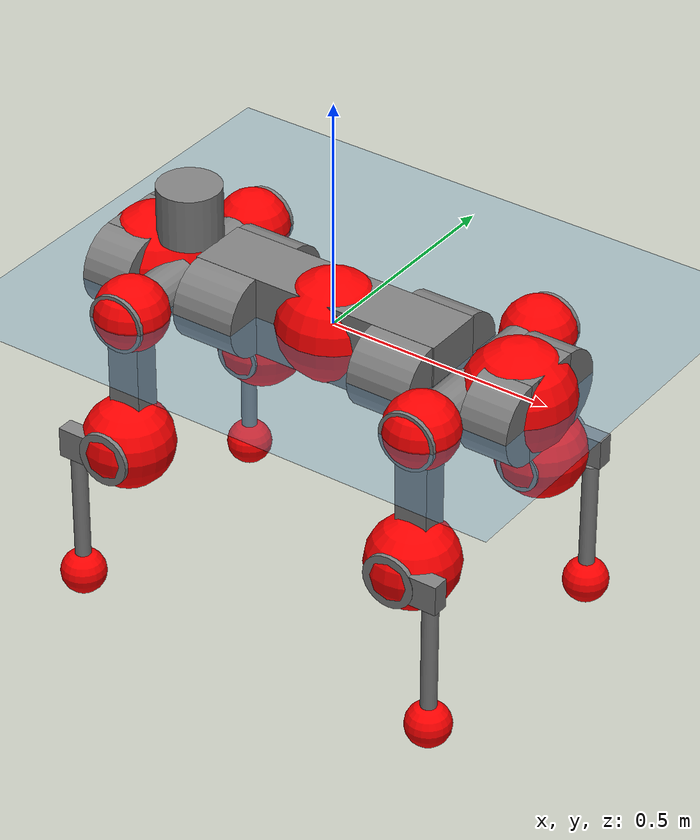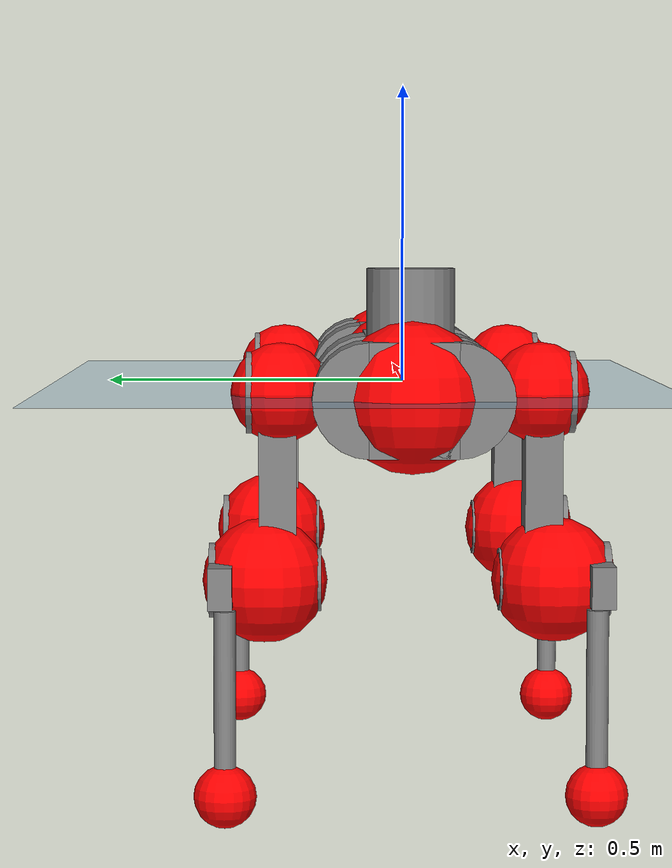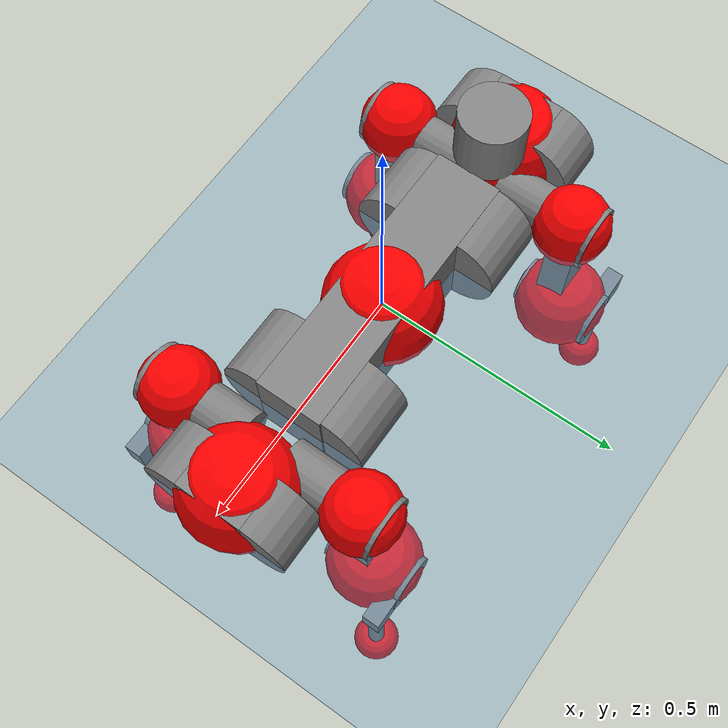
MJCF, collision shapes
<mujoco model="anymal_c">
  <compiler angle="radian" assetdir="assets" balanceinertia="true" inertiafromgeom="false"/>

  <option timestep="0.005" density="1.2" viscosity="2e-05"/>

  <size nkey="1"/>

  <visual>
    <quality shadowsize="8192"/>
    <map shadowclip="0.5"/>
  </visual>

  <default>
    <default class="/">
      <material specular="0" shininess="0.25"/>
      <geom contype="0" conaffinity="0" group="1" solref="-1000 -80"/>
      <site size="0.01 0.005 0.005" group="5"/>
      <general forcelimited="true" forcerange="-80 80" biastype="affine" gainprm="80" biasprm="0 -80 -2"/>
      <default class="anymal_c">
        <joint armature="0.01" damping="0.01" frictionloss="0.1"/>
        <default class="visual">
          <geom type="mesh" group="2"/>
          <default class="visual_zflip"/>
        </default>
        <default class="collision">
          <geom type="cylinder" group="3"/>
          <default class="foot">
            <geom size="0.03 0 0" type="sphere" condim="6" priority="1" friction="0.8 0.02 0.01" solimp="0.015 1 0.03"/>
          </default>
        </default>
      </default>
      <default class="reward_collision_sphere">
        <geom group="5" rgba="1 0 0 1"/>
      </default>
    </default>
  </default>

  <asset>
    <texture type="skybox" colorspace="auto" name="//unnamed_texture_0" builtin="gradient" rgb1="0.95 0.95 0.95" rgb2="0.95 0.95 0.95" width="100" height="600"/>
    <texture type="2d" colorspace="auto" name="texplane" builtin="checker" rgb1="0.345 0.575 0.748" rgb2="0.345 0.575 0.748" markrgb="1 1 1" width="512" height="512"/>
    <texture type="2d" colorspace="linear" name="base" file="base.png"/>
    <texture type="2d" colorspace="linear" name="top_shell" file="top_shell.png"/>
    <texture type="2d" colorspace="linear" name="bottom_shell" file="bottom_shell.png"/>
    <texture type="2d" colorspace="linear" name="remote" file="remote.png"/>
    <texture type="2d" colorspace="linear" name="hatch" file="hatch.png"/>
    <texture type="2d" colorspace="linear" name="handle" file="handle.png"/>
    <texture type="2d" colorspace="linear" name="face" file="face.png"/>
    <texture type="2d" colorspace="linear" name="battery" file="battery.png"/>
    <texture type="2d" colorspace="linear" name="lidar_cage" file="lidar_cage.png"/>
    <texture type="2d" colorspace="linear" name="depth_camera" file="depth_camera.png"/>
    <texture type="2d" colorspace="linear" name="wide_angle_camera" file="wide_angle_camera.png"/>
    <texture type="2d" colorspace="linear" name="lidar" file="lidar.png"/>
    <texture type="2d" colorspace="linear" name="drive" file="drive.png"/>
    <texture type="2d" colorspace="linear" name="hip_l" file="hip_l.png"/>
    <texture type="2d" colorspace="linear" name="shank_l" file="shank_l.png"/>
    <texture type="2d" colorspace="linear" name="foot" file="foot.png"/>
    <texture type="2d" colorspace="linear" name="thigh" file="thigh.png"/>
    <texture type="2d" colorspace="linear" name="shank_r" file="shank_r.png"/>
    <texture type="2d" colorspace="linear" name="hip_r" file="hip_r.png"/>
    <material name="MatPlane" class="/" texture="texplane" texuniform="true" texrepeat="2 2" specular="0.9" shininess="0.5"/>
    <material name="black_plastic" class="/" rgba="0.007 0.007 0.007 1"/>
    <material name="green" class="/" rgba="0.052 0.178 0.033 1"/>
    <material name="red" class="/" rgba="0.178 0.006 0.005 1"/>
    <material name="yellow" class="/" rgba="0.178 0.119 0.006 1"/>
    <material name="lwl" class="/" rgba="0.8 0.8 0.8 1"/>
    <material name="base" class="/" texture="base"/>
    <material name="top_shell" class="/" texture="top_shell"/>
    <material name="bottom_shell" class="/" texture="bottom_shell"/>
    <material name="hip_l" class="/" texture="hip_l"/>
    <material name="thigh" class="/" texture="thigh"/>
    <material name="shank_l" class="/" texture="shank_l"/>
    <material name="foot" class="/" texture="foot"/>
    <material name="hip_r" class="/" texture="hip_r"/>
    <material name="shank" class="/" texture="shank_r"/>
    <material name="hatch" class="/" texture="hatch"/>
    <material name="remote" class="/" texture="remote"/>
    <material name="handle" class="/" texture="handle"/>
    <material name="face" class="/" texture="face"/>
    <material name="depth_camera" class="/" texture="depth_camera"/>
    <material name="wide_angle_camera" class="/" texture="wide_angle_camera"/>
    <material name="battery" class="/" texture="battery"/>
    <material name="lidar_cage" class="/" texture="lidar_cage"/>
    <material name="lidar" class="/" texture="lidar"/>
    <material name="drive" class="/" texture="drive"/>
    <mesh name="base_0" class="/" file="base_0.obj"/>
    <mesh name="base_1" class="/" file="base_1.obj"/>
    <mesh name="base_2" class="/" file="base_2.obj"/>
    <mesh name="base_3" class="/" file="base_3.obj"/>
    <mesh name="base_4" class="/" file="base_4.obj"/>
    <mesh name="base_5" class="/" file="base_5.obj"/>
    <mesh name="top_shell" class="/" file="top_shell.obj"/>
    <mesh name="bottom_shell" class="/" file="bottom_shell.obj"/>
    <mesh name="remote" class="/" file="remote.obj"/>
    <mesh name="handle" class="/" file="handle.obj"/>
    <mesh name="face" class="/" file="face.obj"/>
    <mesh name="wide_angle_camera" class="/" file="wide_angle_camera.obj"/>
    <mesh name="depth_camera" class="/" file="depth_camera.obj"/>
    <mesh name="battery" class="/" file="battery.obj"/>
    <mesh name="lidar_cage" class="/" file="lidar_cage.obj"/>
    <mesh name="lidar" class="/" file="lidar.obj"/>
    <mesh name="drive" class="/" file="drive.obj"/>
    <mesh name="hip_l" class="/" file="hip_l.obj"/>
    <mesh name="thigh" class="/" file="thigh.obj"/>
    <mesh name="shank_l" class="/" file="shank_l.obj"/>
    <mesh name="foot" class="/" file="foot.obj"/>
    <mesh name="hip_r" class="/" file="hip_r.obj"/>
    <mesh name="hatch" class="/" file="hatch.obj"/>
    <mesh name="shank_r" class="/" file="shank_r.obj"/>
  </asset>

  <worldbody>
    <geom name="floor" class="/" size="100 100 0.125" type="plane" group="0" material="MatPlane"/>
    <light name="toplight_shadow" class="/" pos="0 0 5" dir="0.0990148 0.0990148 -0.990148" type="directional" ambient="0.04 0.04 0.04" diffuse="0.55 0.55 0.55" specular="0.12 0.12 0.12"/>
    <light name="toplight_fill" class="/" pos="0 0 5" dir="0.0990148 0.0990148 -0.990148" type="directional" castshadow="false" ambient="0.04 0.04 0.04" diffuse="0.3 0.3 0.3" specular="0.08 0.08 0.08"/>
    <body name="trunk" childclass="anymal_c" pos="0.000224667 4.42805e-05 -0.000798711" quat="1 7.98134e-06 -0.000204556 3.84737e-06">
      <inertial pos="0.00200278 -0.000448407 0.0528669" quat="0.500051 0.501041 0.499386 0.49952" mass="18.7732" diaginertia="0.56198 0.475819 0.269263"/>
      <joint name="//unnamed_joint_0" type="free" armature="0" damping="0" frictionloss="0"/>
      <geom name="//unnamed_geom_1" class="visual" material="green" mesh="base_0"/>
      <geom name="//unnamed_geom_2" class="visual" material="yellow" mesh="base_1"/>
      <geom name="//unnamed_geom_3" class="visual" material="red" mesh="base_2"/>
      <geom name="//unnamed_geom_4" class="visual" material="black_plastic" mesh="base_3"/>
      <geom name="//unnamed_geom_5" class="visual" material="lwl" mesh="base_4"/>
      <geom name="//unnamed_geom_6" class="visual" material="base" mesh="base_5"/>
      <geom name="trunk_1" class="collision" size="0.28628 0.069102 0.0888454" type="box"/>
      <geom name="trunk_2" class="collision" size="0.0888454 0.0715699" pos="0.211592 0.0662499 0" quat="0.707107 0 0.707107 0"/>
      <geom name="trunk_3" class="collision" size="0.0888454 0.0715699" pos="-0.211592 0.0662499 0" quat="0.707107 0 0.707107 0"/>
      <geom name="trunk_4" class="collision" size="0.0888454 0.0715699" pos="0.211592 -0.0662499 0" quat="0.707107 0 0.707107 0"/>
      <geom name="trunk_5" class="collision" size="0.0888454 0.0715699" pos="-0.211592 -0.0662499 0" quat="0.707107 0 0.707107 0"/>
      <geom name="//unnamed_geom_12" class="visual" material="top_shell" mesh="top_shell"/>
      <geom name="//unnamed_geom_13" class="visual" material="bottom_shell" mesh="bottom_shell"/>
      <geom name="//unnamed_geom_14" class="visual" material="remote" mesh="remote"/>
      <geom name="//unnamed_geom_15" class="visual" material="handle" mesh="handle"/>
      <geom name="//unnamed_geom_16" class="visual" pos="0.403241 0 0" quat="1 0 0 0" material="face" mesh="face"/>
      <geom name="trunk_6" class="collision" size="0.0542944 0.069102 0.0888454" pos="0.456748 0 0" type="box"/>
      <geom name="//unnamed_geom_18" class="collision" size="0.0888454 0.0542944" pos="0.456748 0.0662499 0" quat="0.707107 0 0.707107 0"/>
      <geom name="//unnamed_geom_19" class="collision" size="0.0888454 0.0542944" pos="0.456748 -0.0662499 0" quat="0.707107 0 0.707107 0"/>
      <geom name="//unnamed_geom_20" class="visual" pos="0.449114 0 -0.0309612" quat="0.965926 0 0.258819 0" material="depth_camera" mesh="depth_camera"/>
      <geom name="//unnamed_geom_21" class="visual" pos="0.499066 0 0.0156025" material="wide_angle_camera" mesh="wide_angle_camera"/>
      <geom name="//unnamed_geom_22" class="visual_zflip" pos="-0.403241 0 0" quat="0 0 0 1" material="face" mesh="face"/>
      <geom name="trunk_7" class="collision" size="0.0542944 0.069102 0.0888454" pos="-0.456748 0 0" quat="0 0 0 1" type="box"/>
      <geom name="//unnamed_geom_24" class="collision" size="0.0888454 0.0542944" pos="-0.456748 -0.0662499 0" quat="0 -0.707107 0 0.707107"/>
      <geom name="//unnamed_geom_25" class="collision" size="0.0888454 0.0542944" pos="-0.456748 0.0662499 0" quat="0 -0.707107 0 0.707107"/>
      <geom name="//unnamed_geom_26" class="visual" pos="-0.449114 0 -0.0309612" quat="0 -0.258819 0 0.965926" material="depth_camera" mesh="depth_camera"/>
      <geom name="//unnamed_geom_27" class="visual_zflip" pos="-0.499066 0 0.0156025" quat="0 0 0 1" material="wide_angle_camera" mesh="wide_angle_camera"/>
      <geom name="//unnamed_geom_28" class="visual" material="battery" mesh="battery"/>
      <geom name="//unnamed_geom_29" class="visual" pos="0 0.0720201 0.0297498" quat="0.683013 -0.183013 0.183013 0.683013" material="depth_camera" mesh="depth_camera"/>
      <geom name="//unnamed_geom_30" class="visual" pos="0 -0.0720201 0.0297498" quat="0.683013 0.183013 0.183013 -0.683013" material="depth_camera" mesh="depth_camera"/>
      <geom name="//unnamed_geom_31" class="visual" pos="-0.354113 0 0.0766053" quat="1 0 0 0" material="lidar_cage" mesh="lidar_cage"/>
      <geom name="trunk_8" class="collision" size="0.069102 0.0592303" pos="-0.354113 0 0.13914"/>
      <geom name="//unnamed_geom_33" class="visual" pos="-0.354113 -1.03762e-05 0.148208" quat="0.707107 0 0 -0.707107" material="lidar" mesh="lidar"/>
      <geom name="//unnamed_geom_34" class="visual" pos="0.291754 0.0984625 -1.65294e-09" quat="0.258819 0.965926 0 0" material="drive" mesh="drive"/>
      <geom name="//unnamed_geom_35" class="visual" pos="0.291754 -0.0984625 1.65294e-09" quat="0.258819 -0.965926 0 0" material="drive" mesh="drive"/>
      <geom name="//unnamed_geom_36" class="visual" pos="-0.291754 0.0984625 1.65294e-09" quat="0 0 0.965926 -0.258819" material="drive" mesh="drive"/>
      <geom name="//unnamed_geom_37" class="visual" pos="-0.291754 -0.0984625 -1.65294e-09" quat="0 0 -0.965926 -0.258819" material="drive" mesh="drive"/>
      <geom name="//unnamed_geom_38" class="visual" pos="0.112849 0 0.0760842" quat="1 0 0 0" material="hatch" mesh="hatch"/>
      <geom name="//unnamed_geom_39" class="reward_collision_sphere" size="0.118461"/>
      <geom name="//unnamed_geom_40" class="reward_collision_sphere" size="0.118461" pos="0.437777 0 0"/>
      <geom name="//unnamed_geom_41" class="reward_collision_sphere" size="0.118461" pos="-0.437777 0 0"/>
      <site name="imu" pos="0.244554 0.00332077 0.0506042" size="0.00987171"/>
      <camera name="track" pos="0 -1.89285 0" quat="0.707107 0.707107 0 0" mode="trackcom"/>
      <camera name="ego_camera" pos="0.437777 0 -0.04169" quat="-0.5 -0.5 0.5 0.5"/>
      <body name="LF_HIP" pos="0.292403 0.0981571 -0.000384179" quat="0.258831 0.965923 -0.000105551 4.42246e-05">
        <inertial pos="0.0549732 -0.0139682 -0.009293" quat="-0.125933 0.710129 -0.132516 0.679925" mass="2.70209" diaginertia="0.00512015 0.00376973 0.00408959"/>
        <joint name="LF_HAA" pos="0 0 0" axis="0.999995 0.00320208 -0.00057336" range="-0.723487 0.472086" armature="0.00990683" damping="0.0135624" frictionloss="0.0943754"/>
        <geom name="//unnamed_geom_42" class="visual" pos="0 -9.72348e-05 1.59707e-05" quat="0.258819 -0.965926 0 0" material="hip_l" mesh="hip_l"/>
        <geom name="//unnamed_geom_43" class="visual" pos="0.058273 -0.0702965 -0.0412944" quat="0.183013 -0.683013 0.683013 0.183013" material="drive" mesh="drive"/>
        <geom name="//unnamed_geom_44" class="collision" size="0.0493586 0.069102" pos="0.058273 -0.0113191 -0.00719673" quat="-0.353553 -0.612372 0.612372 -0.353553"/>
        <body name="LF_THIGH" pos="0.0590676 -0.0700513 -0.0438725" quat="0.18295 -0.683015 0.682986 0.183167">
          <inertial pos="0.0302302 0.000315453 -0.255709" quat="0.993166 -0.00519864 -0.0806753 0.0841746" mass="2.97013" diaginertia="0.0265232 0.0227074 0.00516941"/>
          <joint name="LF_HFE" pos="0 0 0" axis="0.999997 0.00161498 0.00174204" stiffness="0.00256219" range="-3.12449 3.1385" armature="0.0101742" damping="0.00487816" frictionloss="0.098888"/>
          <geom name="//unnamed_geom_45" class="visual" pos="0.000525475 8.28025e-07 0" quat="0.707107 0 0 -0.707107" material="thigh" mesh="thigh"/>
          <geom name="//unnamed_geom_46" class="collision" size="0.0641661 0.0394869" pos="0.0389135 0 0" quat="0.5 0.5 -0.5 -0.5"/>
          <geom name="//unnamed_geom_47" class="collision" size="0.0370189 0.0296151 0.139501" pos="0.0291851 0 -0.147284" quat="0.707107 0 0 -0.707107" type="box"/>
          <geom name="//unnamed_geom_48" class="visual" pos="0.0975757 0 -0.297041" quat="1 0 0 0" material="drive" mesh="drive"/>
          <geom name="//unnamed_geom_49" class="collision" size="0.0493586 0.069102" pos="0.029477 0 -0.297041" quat="0.707107 0 0.707107 0"/>
          <geom name="//unnamed_geom_50" class="reward_collision_sphere" size="0.0789737" pos="0.024321 0 0"/>
          <body name="LF_SHANK" pos="0.0978816 -0.000623663 -0.29714" quat="1 9.21439e-06 2.2592e-05 -1.59312e-05">
            <inertial pos="0.00407403 -0.0584721 -0.0840748" quat="0.993005 -0.115604 -0.00109574 -0.0239815" mass="0.568888" diaginertia="0.00884534 0.00703067 0.00137866"/>
            <joint name="LF_KFE" pos="0 0 0" axis="0.999997 0.000244881 0.00249001" range="-3.16301 3.12106" armature="0.00965871" damping="0.00732118" frictionloss="0.103349"/>
            <geom name="//unnamed_geom_51" class="visual" pos="0.000171346 0.000913625 0" quat="0.707107 0 0 -0.707107" material="shank_l" mesh="shank_l"/>
            <geom name="LF_kfe_act" class="collision" size="0.0592303 0.0197434" pos="0.0194568 0 0" quat="0.5 0.5 -0.5 -0.5"/>
            <geom name="//unnamed_geom_53" class="collision" size="0.0567614 0.033317 0.0187563" pos="0.0194568 -0.0544186 0" quat="0.5 0.5 -0.5 -0.5" type="box"/>
            <geom name="//unnamed_geom_54" class="visual" pos="0.0126955 -0.0829439 -0.352249" quat="0.382683 0 0 -0.92388" material="foot" mesh="foot"/>
            <geom name="LF_calf" class="collision" size="0.0172755 0.13944" pos="0.0126955 -0.0832383 -0.176124" quat="0.707107 0 0 -0.707107"/>
            <geom name="LF_foot" class="foot" size="0.0296326" pos="0.0126955 -0.0832383 -0.328798" quat="0.707107 0 0 -0.707107"/>
            <geom name="//unnamed_geom_57" class="reward_collision_sphere" size="0.0987171" pos="-0.0486419 0 0"/>
            <geom name="//unnamed_geom_58" class="reward_collision_sphere" size="0.0493586" pos="0.0126955 -0.0832383 -0.328798"/>
            <site name="LF_foot" class="foot" pos="0.0126955 -0.0832383 -0.328798" quat="0.707107 0 0 -0.707107" size="0.00987171"/>
          </body>
        </body>
      </body>
      <body name="RF_HIP" pos="0.29303 -0.098933 -0.000257622" quat="0.259207 -0.965822 -0.000196418 6.63299e-05">
        <inertial pos="0.0556667 0.0148035 -0.00889522" quat="0.1329 0.68194 0.128277 0.707701" mass="2.70319" diaginertia="0.00513428 0.00373252 0.0040618"/>
        <joint name="RF_HAA" pos="0 0 0" axis="0.999984 -0.00562135 0.000327619" range="-0.50841 0.738016" armature="0.0100353" damping="0.0146919" frictionloss="0.0944355"/>
        <geom name="//unnamed_geom_59" class="visual" pos="0 9.7234e-05 1.59707e-05" quat="0.258819 0.965926 0 0" material="hip_r" mesh="hip_r"/>
        <geom name="//unnamed_geom_60" class="visual" pos="0.058273 0.0702965 -0.0412944" quat="0.183013 0.683013 0.683013 -0.183013" material="drive" mesh="drive"/>
        <geom name="//unnamed_geom_61" class="collision" size="0.0493586 0.069102" pos="0.058273 0.0113191 -0.00719673" quat="-0.353553 0.612372 0.612372 0.353553"/>
        <body name="RF_THIGH" pos="0.0586079 0.069539 -0.0435599" quat="0.183126 0.682831 0.683234 -0.182752">
          <inertial pos="0.0307955 0.000173502 -0.256056" quat="0.992724 -0.00603274 -0.0808033 0.0890721" mass="2.93025" diaginertia="0.0262426 0.0227622 0.00509725"/>
          <joint name="RF_HFE" pos="0 0 0" axis="0.999999 0.00123457 0.000675636" stiffness="0.00207799" range="-3.14054 3.1577" armature="0.0102103" damping="0.000807959" frictionloss="0.100854"/>
          <geom name="//unnamed_geom_62" class="visual" pos="0.000525475 8.28025e-07 0" quat="0.707107 0 0 -0.707107" material="thigh" mesh="thigh"/>
          <geom name="//unnamed_geom_63" class="collision" size="0.0641661 0.0394869" pos="0.0389135 0 0" quat="0.5 0.5 0.5 0.5"/>
          <geom name="//unnamed_geom_64" class="collision" size="0.0370189 0.0296151 0.139501" pos="0.0291851 0 -0.147284" quat="0.707107 0 0 0.707107" type="box"/>
          <geom name="//unnamed_geom_65" class="visual" pos="0.0975757 0 -0.297041" quat="1 0 0 0" material="drive" mesh="drive"/>
          <geom name="//unnamed_geom_66" class="collision" size="0.0493586 0.069102" pos="0.029477 0 -0.297041" quat="0.707107 0 0.707107 0"/>
          <geom name="//unnamed_geom_67" class="reward_collision_sphere" size="0.0789737" pos="0.024321 0 0"/>
          <body name="RF_SHANK" pos="0.0966357 0.000502138 -0.296757" quat="1 -0.000182576 6.04496e-05 -0.000132119">
            <inertial pos="0.00508985 0.0577549 -0.0843061" quat="0.99292 0.116441 0.00370203 0.023208" mass="0.560706" diaginertia="0.0088536 0.00698928 0.00138613"/>
            <joint name="RF_KFE" pos="0 0 0" axis="0.999992 -0.00354097 0.00199915" range="-3.13454 3.1323" armature="0.00985505" damping="0.00930478" frictionloss="0.102716"/>
            <geom name="//unnamed_geom_68" class="visual" pos="0.000171345 -0.000913623 0" quat="0.707107 0 0 0.707107" material="shank" mesh="shank_r"/>
            <geom name="RF_kfe_act" class="collision" size="0.0592303 0.0197434" pos="0.0194568 0 0" quat="0.5 0.5 0.5 0.5"/>
            <geom name="//unnamed_geom_70" class="collision" size="0.0567614 0.033317 0.0187563" pos="0.0194568 0.0544186 0" quat="0.5 0.5 0.5 0.5" type="box"/>
            <geom name="//unnamed_geom_71" class="visual" pos="0.0126956 0.0829439 -0.352249" quat="0.382683 0 0 0.92388" material="foot" mesh="foot"/>
            <geom name="RF_calf" class="collision" size="0.0172755 0.13944" pos="0.0126955 0.0832383 -0.176124" quat="0.707107 0 0 0.707107"/>
            <geom name="RF_foot" class="foot" size="0.0294843" pos="0.0126955 0.0832383 -0.328798" quat="0.707107 0 0 0.707107"/>
            <geom name="//unnamed_geom_74" class="reward_collision_sphere" size="0.0987171" pos="-0.0486419 0 0"/>
            <geom name="//unnamed_geom_75" class="reward_collision_sphere" size="0.0493586" pos="0.0126955 0.0832383 -0.328798"/>
            <site name="RF_foot" class="foot" pos="0.0126955 0.0832383 -0.328798" quat="0.707107 0 0 0.707107" size="0.00987171"/>
          </body>
        </body>
      </body>
      <body name="LH_HIP" pos="-0.291296 0.0991783 0.000115299" quat="-7.39679e-06 -6.31988e-07 0.965929 -0.258807">
        <inertial pos="0.055164 0.0139513 -0.00958752" quat="0.134883 0.679592 0.125867 0.710014" mass="2.7031" diaginertia="0.00521464 0.00375594 0.00411944"/>
        <joint name="LH_HAA" pos="0 0 0" axis="0.999998 -0.000489549 -0.00203716" range="-0.495536 0.730403" armature="0.00979369" damping="0.00699825" frictionloss="0.0994989"/>
        <geom name="//unnamed_geom_76" class="visual" pos="0 9.7234e-05 1.59707e-05" quat="-0.258819 -0.965926 0 0" material="hip_r" mesh="hip_r"/>
        <geom name="//unnamed_geom_77" class="visual" pos="0.058273 0.0702965 -0.0412944" quat="0.183013 0.683013 0.683013 -0.183013" material="drive" mesh="drive"/>
        <geom name="//unnamed_geom_78" class="collision" size="0.0493586 0.069102" pos="0.058273 0.0113191 -0.00719673" quat="-0.353553 0.612372 0.612372 0.353553"/>
        <body name="LH_THIGH" pos="0.0576733 0.0686688 -0.0426047" quat="0.183006 0.683104 0.68294 -0.182948">
          <inertial pos="0.0311279 0.000545488 -0.256856" quat="0.992774 -0.00511476 -0.0806264 0.0887347" mass="3.01027" diaginertia="0.026902 0.0231468 0.00517342"/>
          <joint name="LH_HFE" pos="0 0 0" axis="0.99999 0.00451337 -0.000459972" range="-3.12487 3.13448" armature="0.00979447" damping="0.00187435" frictionloss="0.0952986"/>
          <geom name="//unnamed_geom_79" class="visual" pos="0.000525475 8.28025e-07 0" quat="0.707107 0 0 -0.707107" material="thigh" mesh="thigh"/>
          <geom name="//unnamed_geom_80" class="collision" size="0.0641661 0.0394869" pos="0.0389135 0 0" quat="0.5 0.5 -0.5 -0.5"/>
          <geom name="//unnamed_geom_81" class="collision" size="0.0370189 0.0296151 0.139501" pos="0.0291851 0 -0.147284" quat="0.707107 0 0 -0.707107" type="box"/>
          <geom name="//unnamed_geom_82" class="visual" pos="0.0975757 0 -0.297041" quat="1 0 0 0" material="drive" mesh="drive"/>
          <geom name="//unnamed_geom_83" class="collision" size="0.0493586 0.069102" pos="0.029477 0 -0.297041" quat="0.707107 0 0.707107 0"/>
          <geom name="//unnamed_geom_84" class="reward_collision_sphere" size="0.0789737" pos="0.024321 0 0"/>
          <body name="LH_SHANK" pos="0.0981954 -0.000778308 -0.297596" quat="1 -4.23583e-05 4.35926e-05 -1.51265e-06">
            <inertial pos="0.00461607 0.0570687 -0.0850597" quat="0.992936 0.116122 -0.000702781 0.0243581" mass="0.568914" diaginertia="0.00893602 0.00715369 0.00137841"/>
            <joint name="LH_KFE" pos="0 0 0" axis="0.999999 0.0014778 -0.000717804" range="-3.13709 3.11677" armature="0.00995538" damping="0.00152474" frictionloss="0.099486"/>
            <geom name="//unnamed_geom_85" class="visual" pos="0.000171345 -0.000913623 0" quat="-0.707107 0 0 -0.707107" material="shank" mesh="shank_r"/>
            <geom name="LH_kfe_act" class="collision" size="0.0592303 0.0197434" pos="0.0194568 0 0" quat="0.5 0.5 -0.5 -0.5"/>
            <geom name="//unnamed_geom_87" class="collision" size="0.0567614 0.033317 0.0187563" pos="0.0194568 0.0544186 0" quat="0.5 0.5 -0.5 -0.5" type="box"/>
            <geom name="//unnamed_geom_88" class="visual" pos="0.0126956 0.0829439 -0.352249" quat="-0.382683 0 0 -0.92388" material="foot" mesh="foot"/>
            <geom name="LH_calf" class="collision" size="0.0172755 0.13944" pos="0.0126955 0.0832383 -0.176124" quat="0.707107 0 0 -0.707107"/>
            <geom name="LH_foot" class="foot" size="0.0302822" pos="0.0126955 0.0832383 -0.328798" quat="0.707107 0 0 -0.707107"/>
            <geom name="//unnamed_geom_91" class="reward_collision_sphere" size="0.0987171" pos="-0.0486419 0 0"/>
            <geom name="//unnamed_geom_92" class="reward_collision_sphere" size="0.0493586" pos="0.0126955 0.0832383 -0.328798"/>
            <site name="LH_foot" class="foot" pos="0.0126955 0.0832383 -0.328798" quat="0.707107 0 0 -0.707107" size="0.00987171"/>
          </body>
        </body>
      </body>
      <body name="RH_HIP" pos="-0.290583 -0.0983755 5.83666e-05" quat="9.29564e-05 5.22953e-05 -0.965908 -0.258887">
        <inertial pos="0.0554813 -0.0136761 -0.00885213" quat="-0.126738 0.710417 -0.135673 0.678851" mass="2.66003" diaginertia="0.00518849 0.00377306 0.00404243"/>
        <joint name="RH_HAA" pos="0 0 0" axis="0.999972 0.00535917 0.0051394" range="-0.706488 0.490914" armature="0.00988638" damping="0.0105887" frictionloss="0.104223"/>
        <geom name="//unnamed_geom_93" class="visual" pos="0 -9.72348e-05 1.59707e-05" quat="-0.258819 0.965926 0 0" material="hip_l" mesh="hip_l"/>
        <geom name="//unnamed_geom_94" class="visual" pos="0.058273 -0.0702965 -0.0412944" quat="-0.183013 0.683013 -0.683013 -0.183013" material="drive" mesh="drive"/>
        <geom name="//unnamed_geom_95" class="collision" size="0.0493586 0.069102" pos="0.058273 -0.0113191 -0.00719673" quat="0.353553 0.612372 -0.612372 0.353553"/>
        <body name="RH_THIGH" pos="0.0581138 -0.068732 -0.0433339" quat="-0.183108 0.683131 -0.682821 -0.183188">
          <inertial pos="0.0295268 0.000887112 -0.255939" quat="0.99312 -0.00109986 -0.0802452 0.085279" mass="2.91525" diaginertia="0.0263252 0.0226304 0.0051716"/>
          <joint name="RH_HFE" pos="0 0 0" axis="0.999994 -0.00307 -0.00163174" range="-3.13757 3.15415" armature="0.00994997" damping="0.0130375" frictionloss="0.097326"/>
          <geom name="//unnamed_geom_96" class="visual" pos="0.000525475 8.28025e-07 0" quat="0.707107 0 0 -0.707107" material="thigh" mesh="thigh"/>
          <geom name="//unnamed_geom_97" class="collision" size="0.0641661 0.0394869" pos="0.0389135 0 0" quat="0.5 0.5 0.5 0.5"/>
          <geom name="//unnamed_geom_98" class="collision" size="0.0370189 0.0296151 0.139501" pos="0.0291851 0 -0.147284" quat="0.707107 0 0 0.707107" type="box"/>
          <geom name="//unnamed_geom_99" class="visual" pos="0.0975757 0 -0.297041" quat="1 0 0 0" material="drive" mesh="drive"/>
          <geom name="//unnamed_geom_100" class="collision" size="0.0493586 0.069102" pos="0.029477 0 -0.297041" quat="0.707107 0 0.707107 0"/>
          <geom name="//unnamed_geom_101" class="reward_collision_sphere" size="0.0789737" pos="0.024321 0 0"/>
          <body name="RH_SHANK" pos="0.096513 -0.000275824 -0.296714" quat="1 -0.000386417 -0.000330828 0.000194211">
            <inertial pos="0.00525806 -0.0579262 -0.0841284" quat="0.993038 -0.115217 -0.000138649 -0.024499" mass="0.556085" diaginertia="0.00870687 0.00685899 0.00135349"/>
            <joint name="RH_KFE" pos="0 0 0" axis="0.999957 -0.00321472 0.00866945" range="-3.12286 3.12844" armature="0.00995711" damping="0.00360448" frictionloss="0.097571"/>
            <geom name="//unnamed_geom_102" class="visual" pos="0.000171346 0.000913625 0" quat="0.707107 0 0 -0.707107" material="shank_l" mesh="shank_l"/>
            <geom name="RH_kfe_act" class="collision" size="0.0592303 0.0197434" pos="0.0194568 0 0" quat="0.5 0.5 0.5 0.5"/>
            <geom name="//unnamed_geom_104" class="collision" size="0.0567614 0.033317 0.0187563" pos="0.0194568 -0.0544186 0" quat="0.5 0.5 0.5 0.5" type="box"/>
            <geom name="//unnamed_geom_105" class="visual" pos="0.0126955 -0.0829439 -0.352249" quat="0.382683 0 0 -0.92388" material="foot" mesh="foot"/>
            <geom name="RH_calf" class="collision" size="0.0172755 0.13944" pos="0.0126955 -0.0832383 -0.176124" quat="0.707107 0 0 0.707107"/>
            <geom name="RH_foot" class="foot" size="0.0289826" pos="0.0126955 -0.0832383 -0.328798" quat="0.707107 0 0 0.707107"/>
            <geom name="//unnamed_geom_108" class="reward_collision_sphere" size="0.0987171" pos="-0.0486419 0 0"/>
            <geom name="//unnamed_geom_109" class="reward_collision_sphere" size="0.0493586" pos="0.0126955 -0.0832383 -0.328798"/>
            <site name="RH_foot" class="foot" pos="0.0126955 -0.0832383 -0.328798" quat="0.707107 0 0 0.707107" size="0.00987171"/>
          </body>
        </body>
      </body>
    </body>
  </worldbody>

  <contact>
    <pair class="/" geom1="floor" geom2="LF_foot" name="//unnamed_contact_0"/>
    <pair class="/" geom1="floor" geom2="RF_foot" name="//unnamed_contact_1"/>
    <pair class="/" geom1="floor" geom2="LH_foot" name="//unnamed_contact_2"/>
    <pair class="/" geom1="floor" geom2="RH_foot" name="//unnamed_contact_3"/>
  </contact>

  <actuator>
    <general name="LF_HAA" class="/" joint="LF_HAA" forcerange="-79.0514 79.0514" gainprm="80.1805" biasprm="0 -80.1805 -1.97274"/>
    <general name="LF_HFE" class="/" joint="LF_HFE" forcerange="-80.5536 80.5536" gainprm="80.1805" biasprm="0 -80.1805 -1.97274"/>
    <general name="LF_KFE" class="/" joint="LF_KFE" forcerange="-76.5519 76.5519" gainprm="80.1805" biasprm="0 -80.1805 -1.97274"/>
    <general name="RF_HAA" class="/" joint="RF_HAA" forcerange="-78.3288 78.3288" gainprm="80.1805" biasprm="0 -80.1805 -1.97274"/>
    <general name="RF_HFE" class="/" joint="RF_HFE" forcerange="-77.1895 77.1895" gainprm="80.1805" biasprm="0 -80.1805 -1.97274"/>
    <general name="RF_KFE" class="/" joint="RF_KFE" forcerange="-78.3983 78.3983" gainprm="80.1805" biasprm="0 -80.1805 -1.97274"/>
    <general name="LH_HAA" class="/" joint="LH_HAA" forcerange="-78.8352 78.8352" gainprm="80.1805" biasprm="0 -80.1805 -1.97274"/>
    <general name="LH_HFE" class="/" joint="LH_HFE" forcerange="-77.4733 77.4733" gainprm="80.1805" biasprm="0 -80.1805 -1.97274"/>
    <general name="LH_KFE" class="/" joint="LH_KFE" forcerange="-80.7964 80.7964" gainprm="80.1805" biasprm="0 -80.1805 -1.97274"/>
    <general name="RH_HAA" class="/" joint="RH_HAA" forcerange="-79.3354 79.3354" gainprm="80.1805" biasprm="0 -80.1805 -1.97274"/>
    <general name="RH_HFE" class="/" joint="RH_HFE" forcerange="-79.7218 79.7218" gainprm="80.1805" biasprm="0 -80.1805 -1.97274"/>
    <general name="RH_KFE" class="/" joint="RH_KFE" forcerange="-76.3834 76.3834" gainprm="80.1805" biasprm="0 -80.1805 -1.97274"/>
  </actuator>

  <sensor>
    <gyro site="imu" name="imu_angular_velocity"/>
    <velocimeter site="imu" name="imu_linear_velocity"/>
    <framelinvel objtype="site" objname="LF_foot" name="LF_foot_global_linear_velocity"/>
    <framelinvel objtype="site" objname="RF_foot" name="RF_foot_global_linear_velocity"/>
    <framelinvel objtype="site" objname="LH_foot" name="LH_foot_global_linear_velocity"/>
    <framelinvel objtype="site" objname="RH_foot" name="RH_foot_global_linear_velocity"/>
  </sensor>

  <keyframe>
    <key name="home" qpos="0 0 0.55 1 0 0 0 0 0.4 -0.8 0 -0.4 0.8 0 -0.4 0.8 0 0.4 -0.8"/>
  </keyframe>
</mujoco>
